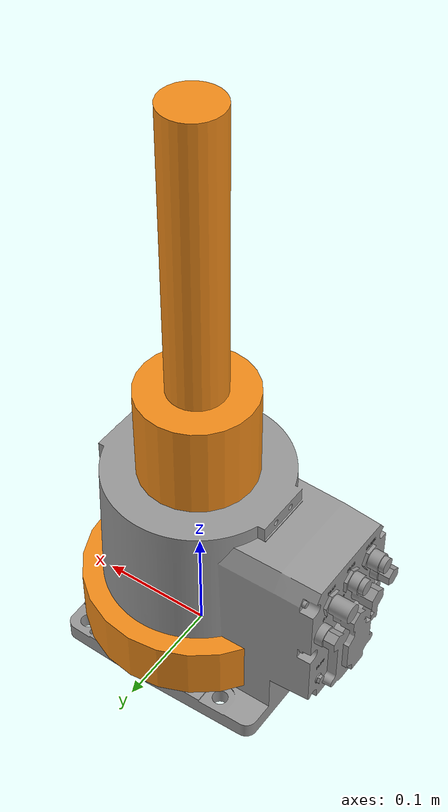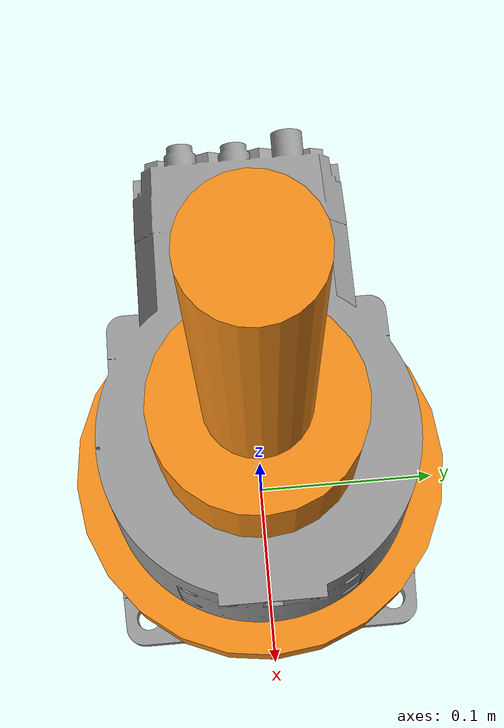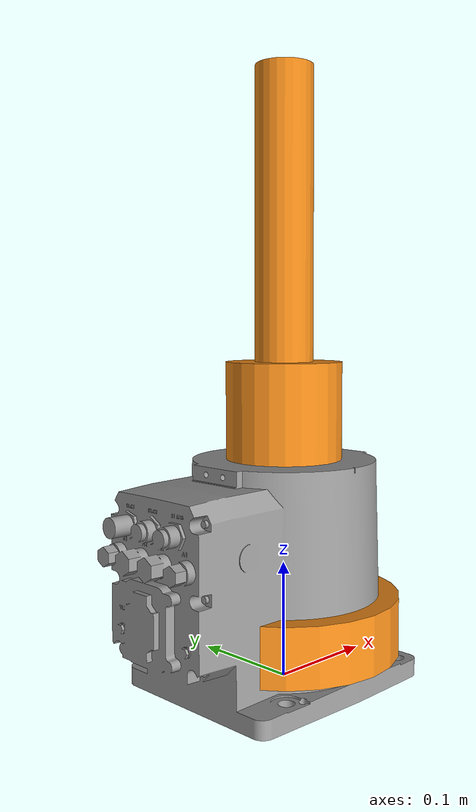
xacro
<?xml version="1.0"?>

<robot name="mogi_arm" xmlns:xacro="http://www.ros.org/wiki/xacro">

  <!-- RViz colors -->
  <xacro:include filename="$(find bme_ros_pp_project)/urdf/materials.xacro" />

  <!-- Global reference link -->
  <link name="world"/>

  <joint name="fixed_base" type="fixed">
    <parent link="world"/>
    <child link="base_link"/>
  </joint>

  <!-- Arm base link -->
  <link name="base_link">
    <inertial>
      <mass value="2"/>
      <origin xyz="0.0 0.0 0.0"/>
      <inertia ixx="0.0117" ixy="0.0" ixz="0.0"
               iyy="0.0117" iyz="0.0"
               izz="0.0225"
      />
    </inertial>
    <collision>
      <geometry>
        <cylinder radius="0.15" length="0.05"/>
      </geometry>
      <origin xyz="0.0 0.0 0.0" rpy="0.0 0.0 0.0"/>
    </collision>
    <visual>
      <geometry>
        <mesh filename = "package://bme_ros_pp_project/meshes/link0.dae"/>
      </geometry>
      <material name="grey"/>
      <origin xyz="0.0 0.0 0.0" rpy="0.0 0.0 0.0"/>
    </visual>
  </link>

  <gazebo reference="base_link">
    <material>Gazebo/Grey</material>
  </gazebo>

    <!-- Shoulder pan joint -->
  <joint name="shoulder_pan_joint" type="revolute">
    <limit lower="-3.14" upper="3.14" effort="330.0" velocity="3.14"/>
    <parent link="base_link"/>
    <child link="shoulder_link"/>
    <axis xyz="0 0 1"/>
    <origin xyz="0.0 0.0 0.05" rpy="0.0 0.0 0.0"/>
    <dynamics damping="0.0" friction="0.0"/>
  </joint>

  <!-- Shoulder link -->
  <link name="shoulder_link">
    <inertial>
      <mass value="0.5"/>
      <origin xyz="0.0 0.0 0.0" rpy="0.0 0.0 0.0"/>
      <inertia ixx="0.0014" ixy="0.0" ixz="0.0"
               iyy="0.0014" iyz="0.0"
               izz="0.0025"
      />
    </inertial>
    <collision>
      <geometry>
        <cylinder radius="0.1" length="0.05"/>
      </geometry>
      <origin xyz="0.0 0.0 0.0" rpy="0.0 0.0 0.0"/>
    </collision>
    <visual>
      <geometry>
        <cylinder radius="0.1" length="0.05"/>
      </geometry>
      <material name="orange"/>
      <origin xyz="0.0 0.0 0.0" rpy="0.0 0.0 0.0"/>
    </visual>
  </link>

  <gazebo reference="shoulder_link">
    <material>Gazebo/Orange</material>
  </gazebo>

  <!-- Shoulder lift joint -->
  <joint name="shoulder_lift_joint" type="revolute">
    <limit lower="-1.5708" upper="1.5708" effort="330.0" velocity="3.14"/>
    <parent link="shoulder_link"/>
    <child link="upper_arm_link"/>
    <axis xyz="0 1 0"/>
    <origin xyz="0.0 0.0 0.025" rpy="0.0 0.0 0.0"/>
    <dynamics damping="0.0" friction="0.0"/>
  </joint>

  <!-- Upper arm link -->
  <link name="upper_arm_link">
    <inertial>
      <mass value="0.3"/>
      <origin xyz="0.0 0.0 0.1" rpy="0.0 0.0 0.0"/>
      <inertia ixx="0.0012" ixy="0.0" ixz="0.0"
               iyy="0.0012" iyz="0.0"
               izz="0.0004"
      />
    </inertial>
    <collision>
      <geometry>
        <cylinder radius="0.05" length="0.2"/>
      </geometry>
      <origin xyz="0.0 0.0 0.1" rpy="0.0 0.0 0.0"/>
    </collision>
    <visual>
      <geometry>
        <cylinder radius="0.05" length="0.2"/>
      </geometry>
      <material name="orange"/>
      <origin xyz="0.0 0.0 0.1" rpy="0.0 0.0 0.0"/>
    </visual>
  </link>

  <gazebo reference="upper_arm_link">
    <material>Gazebo/Orange</material>
  </gazebo>

  <!-- Elbow joint -->
  <joint name="elbow_joint" type="revolute">
    <limit lower="-2.3562" upper="2.3562" effort="150.0" velocity="3.14"/>
    <parent link="upper_arm_link"/>
    <child link="forearm_link"/>
    <axis xyz="0 1 0"/>
    <origin xyz="0.0 0.0 0.2" rpy="0.0 0.0 0.0"/>
    <dynamics damping="0.0" friction="0.0"/>
  </joint>

  <!-- Forearm link -->
  <link name="forearm_link">
    <inertial>
      <mass value="0.2"/>
      <origin xyz="0.0 0.0 0.125" rpy="0.0 0.0 0.0"/>
      <inertia ixx="0.0011" ixy="0.0" ixz="0.0"
               iyy="0.0011" iyz="0.0"
               izz="0.0004"
      />
    </inertial>
    <collision>
      <geometry>
        <cylinder radius="0.025" length="0.25"/>
      </geometry>
      <origin xyz="0.0 0.0 0.125" rpy="0.0 0.0 0.0"/>
    </collision>
    <visual>
      <geometry>
        <cylinder radius="0.025" length="0.25"/>
      </geometry>
      <material name="orange"/>
      <origin xyz="0.0 0.0 0.125" rpy="0.0 0.0 0.0"/>
    </visual>
  </link>

  <gazebo reference="forearm_link">
    <material>Gazebo/Orange</material>
  </gazebo>

</robot>
